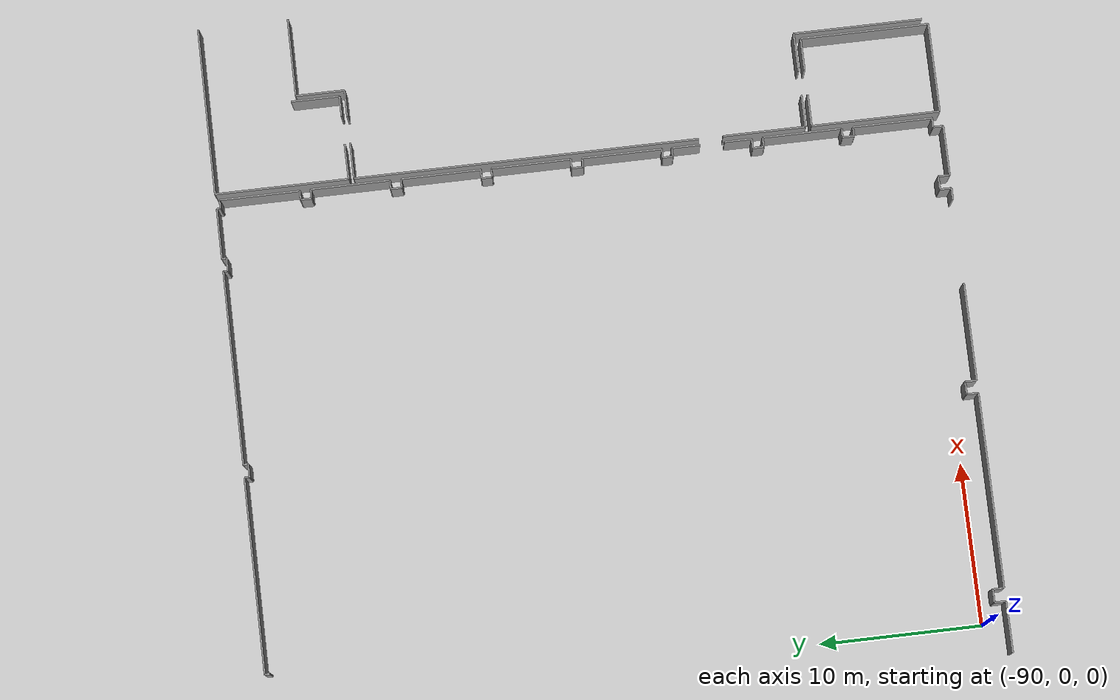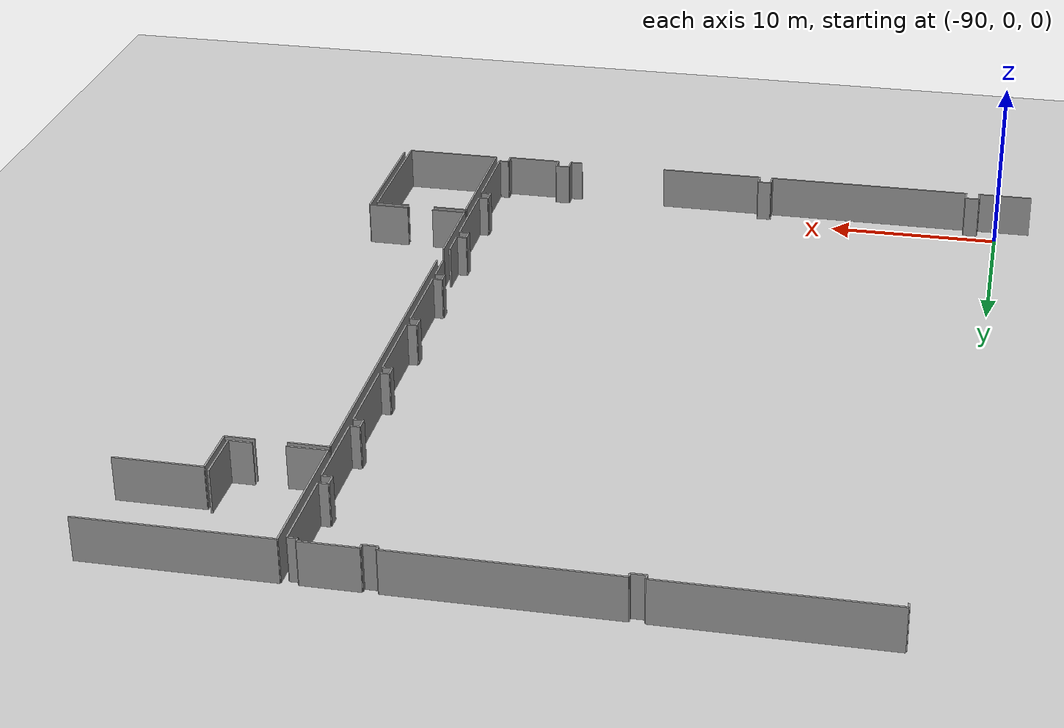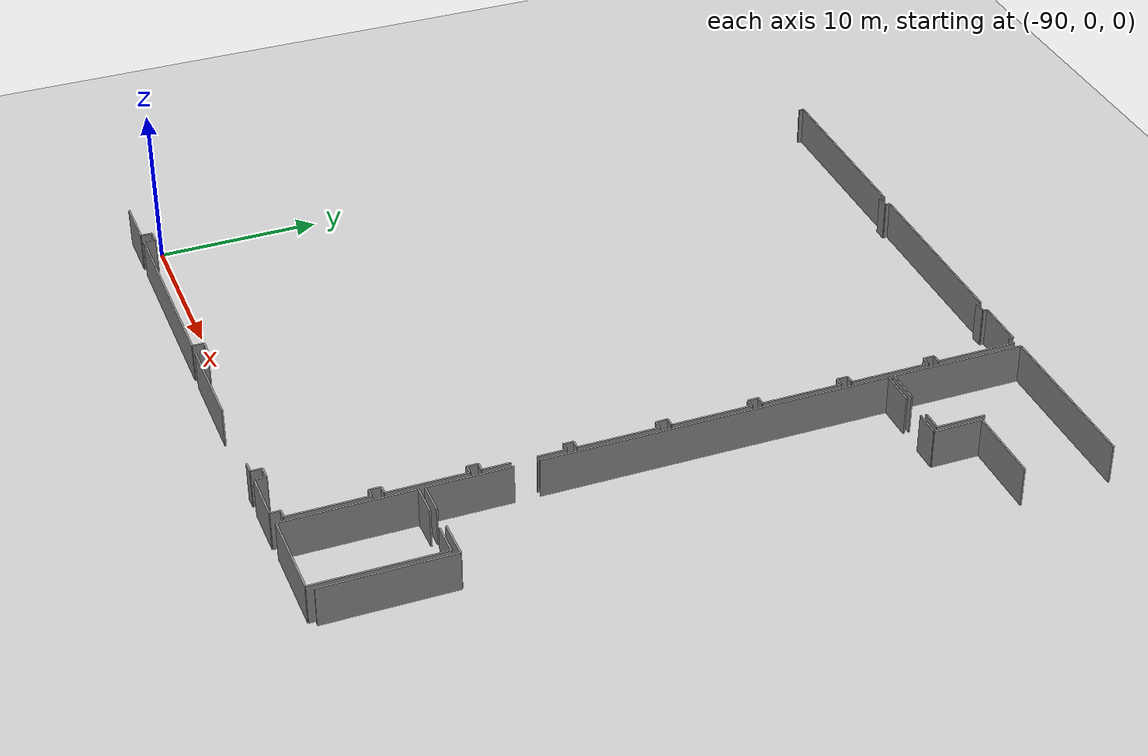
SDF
<sdf version="1.6">
 <world name="default">
  <model name="ground_plane">
   <static>1</static>
   <link name="link">
    <collision name="collision">
     <geometry><plane><normal>0 0 1</normal><size>100 100</size></plane></geometry>
     <surface><friction><ode><mu>100</mu><mu2>50</mu2></ode></friction></surface>
    </collision>
    <visual name="visual">
     <cast_shadows>0</cast_shadows>
     <geometry><plane><normal>0 0 1</normal><size>100 100</size></plane></geometry>
     <material>
      <script><uri>file://media/materials/scripts/gazebo.material</uri><name>Gazebo/Grey</name></script>
     </material>
    </visual>
   </link>
  </model>
  <model name="50015847">
   <static>1</static>
   <link name="Wall_186">
    <collision name="Wall_186_Collision">
     <geometry><box><size>0.315757360045 0.1 2.5</size></box></geometry>
     <pose>0.157878680022 0 1.25 0 0 0</pose>
    </collision>
    <visual name="Wall_186_Visual">
     <pose>0.157878680022 0 1.25 0 0 0</pose>
     <geometry><box><size>0.315757360045 0.1 2.5</size></box></geometry>
     <material>
      <script><uri>file://media/materials/scripts/gazebo.material</uri><name>Gazebo/Grey</name></script>
      <ambient>1 1 1 1</ambient>
     </material>
    </visual>
    <pose>44.2929780851 -0.563126048711 0 0 0 1.57079632679</pose>
   </link>
   <link name="Wall_187">
    <collision name="Wall_187_Collision">
     <geometry><box><size>12.0267453094 0.1 2.5</size></box></geometry>
     <pose>6.0133726547 0 1.25 0 0 0</pose>
    </collision>
    <visual name="Wall_187_Visual">
     <pose>6.0133726547 0 1.25 0 0 0</pose>
     <geometry><box><size>12.0267453094 0.1 2.5</size></box></geometry>
     <material>
      <script><uri>file://media/materials/scripts/gazebo.material</uri><name>Gazebo/Grey</name></script>
      <ambient>1 1 1 1</ambient>
     </material>
    </visual>
    <pose>44.2929780851 -0.247368688666 0 0 0 0.0</pose>
   </link>
   <link name="Wall_188">
    <collision name="Wall_188_Collision">
     <geometry><box><size>0.313215030254 0.1 2.5</size></box></geometry>
     <pose>0.156607515127 0 1.25 0 0 0</pose>
    </collision>
    <visual name="Wall_188_Visual">
     <pose>0.156607515127 0 1.25 0 0 0</pose>
     <geometry><box><size>0.313215030254 0.1 2.5</size></box></geometry>
     <material>
      <script><uri>file://media/materials/scripts/gazebo.material</uri><name>Gazebo/Grey</name></script>
      <ambient>1 1 1 1</ambient>
     </material>
    </visual>
    <pose>56.3197233945 -0.247368688666 0 0 0 -1.57079632679</pose>
   </link>
   <link name="Wall_189">
    <collision name="Wall_189_Collision">
     <geometry><box><size>0.802359282046 0.1 2.5</size></box></geometry>
     <pose>0.401179641023 0 1.25 0 0 0</pose>
    </collision>
    <visual name="Wall_189_Visual">
     <pose>0.401179641023 0 1.25 0 0 0</pose>
     <geometry><box><size>0.802359282046 0.1 2.5</size></box></geometry>
     <material>
      <script><uri>file://media/materials/scripts/gazebo.material</uri><name>Gazebo/Grey</name></script>
      <ambient>1 1 1 1</ambient>
     </material>
    </visual>
    <pose>56.3197233945 -0.56058371892 0 0 0 0.0</pose>
   </link>
   <link name="Wall_190">
    <collision name="Wall_190_Collision">
     <geometry><box><size>0.296689886612 0.1 2.5</size></box></geometry>
     <pose>0.148344943306 0 1.25 0 0 0</pose>
    </collision>
    <visual name="Wall_190_Visual">
     <pose>0.148344943306 0 1.25 0 0 0</pose>
     <geometry><box><size>0.296689886612 0.1 2.5</size></box></geometry>
     <material>
      <script><uri>file://media/materials/scripts/gazebo.material</uri><name>Gazebo/Grey</name></script>
      <ambient>1 1 1 1</ambient>
     </material>
    </visual>
    <pose>57.1220826766 -0.56058371892 0 0 0 1.57079632679</pose>
   </link>
   <link name="Wall_191">
    <collision name="Wall_191_Collision">
     <geometry><box><size>12.0005593126 0.1 2.5</size></box></geometry>
     <pose>6.00027965628 0 1.25 0 0 0</pose>
    </collision>
    <visual name="Wall_191_Visual">
     <pose>6.00027965628 0 1.25 0 0 0</pose>
     <geometry><box><size>12.0005593126 0.1 2.5</size></box></geometry>
     <material>
      <script><uri>file://media/materials/scripts/gazebo.material</uri><name>Gazebo/Grey</name></script>
      <ambient>1 1 1 1</ambient>
     </material>
    </visual>
    <pose>57.1220826766 -0.263893832308 0 0 0 0.0</pose>
   </link>
   <link name="Wall_192">
    <collision name="Wall_192_Collision">
     <geometry><box><size>0.276351248284 0.1 2.5</size></box></geometry>
     <pose>0.138175624142 0 1.25 0 0 0</pose>
    </collision>
    <visual name="Wall_192_Visual">
     <pose>0.138175624142 0 1.25 0 0 0</pose>
     <geometry><box><size>0.276351248284 0.1 2.5</size></box></geometry>
     <material>
      <script><uri>file://media/materials/scripts/gazebo.material</uri><name>Gazebo/Grey</name></script>
      <ambient>1 1 1 1</ambient>
     </material>
    </visual>
    <pose>69.1226419891 -0.263893832308 0 0 0 -1.57079632679</pose>
   </link>
   <link name="Wall_193">
    <collision name="Wall_193_Collision">
     <geometry><box><size>0.79829155438 0.1 2.5</size></box></geometry>
     <pose>0.39914577719 0 1.25 0 0 0</pose>
    </collision>
    <visual name="Wall_193_Visual">
     <pose>0.39914577719 0 1.25 0 0 0</pose>
     <geometry><box><size>0.79829155438 0.1 2.5</size></box></geometry>
     <material>
      <script><uri>file://media/materials/scripts/gazebo.material</uri><name>Gazebo/Grey</name></script>
      <ambient>1 1 1 1</ambient>
     </material>
    </visual>
    <pose>69.1226419891 -0.540245080592 0 0 0 0.0</pose>
   </link>
   <link name="Wall_194">
    <collision name="Wall_194_Collision">
     <geometry><box><size>0.282707072761 0.1 2.5</size></box></geometry>
     <pose>0.141353536381 0 1.25 0 0 0</pose>
    </collision>
    <visual name="Wall_194_Visual">
     <pose>0.141353536381 0 1.25 0 0 0</pose>
     <geometry><box><size>0.282707072761 0.1 2.5</size></box></geometry>
     <material>
      <script><uri>file://media/materials/scripts/gazebo.material</uri><name>Gazebo/Grey</name></script>
      <ambient>1 1 1 1</ambient>
     </material>
    </visual>
    <pose>69.9209335435 -0.540245080592 0 0 0 1.57079632679</pose>
   </link>
   <link name="Wall_195">
    <collision name="Wall_195_Collision">
     <geometry><box><size>3.12121828444 0.1 2.5</size></box></geometry>
     <pose>1.56060914222 0 1.25 0 0 0</pose>
    </collision>
    <visual name="Wall_195_Visual">
     <pose>1.56060914222 0 1.25 0 0 0</pose>
     <geometry><box><size>3.12121828444 0.1 2.5</size></box></geometry>
     <material>
      <script><uri>file://media/materials/scripts/gazebo.material</uri><name>Gazebo/Grey</name></script>
      <ambient>1 1 1 1</ambient>
     </material>
    </visual>
    <pose>69.9209335435 -0.25753800783 0 0 0 0.0</pose>
   </link>
   <link name="Wall_196">
    <collision name="Wall_196_Collision">
     <geometry><box><size>0.226267351401 0.1 2.5</size></box></geometry>
     <pose>0.1131336757 0 1.25 0 0 0</pose>
    </collision>
    <visual name="Wall_196_Visual">
     <pose>0.1131336757 0 1.25 0 0 0</pose>
     <geometry><box><size>0.226267351401 0.1 2.5</size></box></geometry>
     <material>
      <script><uri>file://media/materials/scripts/gazebo.material</uri><name>Gazebo/Grey</name></script>
      <ambient>1 1 1 1</ambient>
     </material>
    </visual>
    <pose>73.0421518279 -0.25753800783 0 0 0 -1.57079632679</pose>
   </link>
   <link name="Wall_197">
    <collision name="Wall_197_Collision">
     <geometry><box><size>0.53516042101 0.1 2.5</size></box></geometry>
     <pose>0.267580210505 0 1.25 0 0 0</pose>
    </collision>
    <visual name="Wall_197_Visual">
     <pose>0.267580210505 0 1.25 0 0 0</pose>
     <geometry><box><size>0.53516042101 0.1 2.5</size></box></geometry>
     <material>
      <script><uri>file://media/materials/scripts/gazebo.material</uri><name>Gazebo/Grey</name></script>
      <ambient>1 1 1 1</ambient>
     </material>
    </visual>
    <pose>73.0421518279 -0.483805359231 0 0 0 0.0</pose>
   </link>
   <link name="Wall_198">
    <collision name="Wall_198_Collision">
     <geometry><box><size>4.95703462653 0.1 2.5</size></box></geometry>
     <pose>2.47851731327 0 1.25 0 0 0</pose>
    </collision>
    <visual name="Wall_198_Visual">
     <pose>2.47851731327 0 1.25 0 0 0</pose>
     <geometry><box><size>4.95703462653 0.1 2.5</size></box></geometry>
     <material>
      <script><uri>file://media/materials/scripts/gazebo.material</uri><name>Gazebo/Grey</name></script>
      <ambient>1 1 1 1</ambient>
     </material>
    </visual>
    <pose>73.5773122489 -0.483805359231 0 0 0 -1.57079632679</pose>
   </link>
   <link name="Wall_199">
    <collision name="Wall_199_Collision">
     <geometry><box><size>0.550922865714 0.1 2.5</size></box></geometry>
     <pose>0.275461432857 0 1.25 0 0 0</pose>
    </collision>
    <visual name="Wall_199_Visual">
     <pose>0.275461432857 0 1.25 0 0 0</pose>
     <geometry><box><size>0.550922865714 0.1 2.5</size></box></geometry>
     <material>
      <script><uri>file://media/materials/scripts/gazebo.material</uri><name>Gazebo/Grey</name></script>
      <ambient>1 1 1 1</ambient>
     </material>
    </visual>
    <pose>73.5773122489 -5.44083998576 0 0 0 3.14159265359</pose>
   </link>
   <link name="Wall_200">
    <collision name="Wall_200_Collision">
     <geometry><box><size>0.670412365892 0.1 2.5</size></box></geometry>
     <pose>0.335206182946 0 1.25 0 0 0</pose>
    </collision>
    <visual name="Wall_200_Visual">
     <pose>0.335206182946 0 1.25 0 0 0</pose>
     <geometry><box><size>0.670412365892 0.1 2.5</size></box></geometry>
     <material>
      <script><uri>file://media/materials/scripts/gazebo.material</uri><name>Gazebo/Grey</name></script>
      <ambient>1 1 1 1</ambient>
     </material>
    </visual>
    <pose>73.0263893832 -5.44083998576 0 0 0 -1.57079632679</pose>
   </link>
   <link name="Wall_201">
    <collision name="Wall_201_Collision">
     <geometry><box><size>0.571515737021 0.1 2.5</size></box></geometry>
     <pose>0.285757868511 0 1.25 0 0 0</pose>
    </collision>
    <visual name="Wall_201_Visual">
     <pose>0.285757868511 0 1.25 0 0 0</pose>
     <geometry><box><size>0.571515737021 0.1 2.5</size></box></geometry>
     <material>
      <script><uri>file://media/materials/scripts/gazebo.material</uri><name>Gazebo/Grey</name></script>
      <ambient>1 1 1 1</ambient>
     </material>
    </visual>
    <pose>73.0263893832 -6.11125235166 0 0 0 0.0</pose>
   </link>
   <link name="Wall_202">
    <collision name="Wall_202_Collision">
     <geometry><box><size>4.90491686582 0.1 2.5</size></box></geometry>
     <pose>2.45245843291 0 1.25 0 0 0</pose>
    </collision>
    <visual name="Wall_202_Visual">
     <pose>2.45245843291 0 1.25 0 0 0</pose>
     <geometry><box><size>4.90491686582 0.1 2.5</size></box></geometry>
     <material>
      <script><uri>file://media/materials/scripts/gazebo.material</uri><name>Gazebo/Grey</name></script>
      <ambient>1 1 1 1</ambient>
     </material>
    </visual>
    <pose>73.5979051203 -6.11125235166 0 0 0 -1.57079632679</pose>
   </link>
   <link name="Wall_203">
    <collision name="Wall_203_Collision">
     <geometry><box><size>0.54634667209 0.1 2.5</size></box></geometry>
     <pose>0.273173336045 0 1.25 0 0 0</pose>
    </collision>
    <visual name="Wall_203_Visual">
     <pose>0.273173336045 0 1.25 0 0 0</pose>
     <geometry><box><size>0.54634667209 0.1 2.5</size></box></geometry>
     <material>
      <script><uri>file://media/materials/scripts/gazebo.material</uri><name>Gazebo/Grey</name></script>
      <ambient>1 1 1 1</ambient>
     </material>
    </visual>
    <pose>73.5979051203 -11.0161692175 0 0 0 3.14159265359</pose>
   </link>
   <link name="Wall_204">
    <collision name="Wall_204_Collision">
     <geometry><box><size>0.688208674429 0.1 2.5</size></box></geometry>
     <pose>0.344104337215 0 1.25 0 0 0</pose>
    </collision>
    <visual name="Wall_204_Visual">
     <pose>0.344104337215 0 1.25 0 0 0</pose>
     <geometry><box><size>0.688208674429 0.1 2.5</size></box></geometry>
     <material>
      <script><uri>file://media/materials/scripts/gazebo.material</uri><name>Gazebo/Grey</name></script>
      <ambient>1 1 1 1</ambient>
     </material>
    </visual>
    <pose>73.0515584482 -11.0161692175 0 0 0 -1.57079632679</pose>
   </link>
   <link name="Wall_205">
    <collision name="Wall_205_Collision">
     <geometry><box><size>0.554482127422 0.1 2.5</size></box></geometry>
     <pose>0.277241063711 0 1.25 0 0 0</pose>
    </collision>
    <visual name="Wall_205_Visual">
     <pose>0.277241063711 0 1.25 0 0 0</pose>
     <geometry><box><size>0.554482127422 0.1 2.5</size></box></geometry>
     <material>
      <script><uri>file://media/materials/scripts/gazebo.material</uri><name>Gazebo/Grey</name></script>
      <ambient>1 1 1 1</ambient>
     </material>
    </visual>
    <pose>73.0515584482 -11.7043778919 0 0 0 0.0</pose>
   </link>
   <link name="Wall_206">
    <collision name="Wall_206_Collision">
     <geometry><box><size>4.94025524991 0.1 2.5</size></box></geometry>
     <pose>2.47012762496 0 1.25 0 0 0</pose>
    </collision>
    <visual name="Wall_206_Visual">
     <pose>2.47012762496 0 1.25 0 0 0</pose>
     <geometry><box><size>4.94025524991 0.1 2.5</size></box></geometry>
     <material>
      <script><uri>file://media/materials/scripts/gazebo.material</uri><name>Gazebo/Grey</name></script>
      <ambient>1 1 1 1</ambient>
     </material>
    </visual>
    <pose>73.6060405756 -11.7043778919 0 0 0 -1.57079632679</pose>
   </link>
   <link name="Wall_207">
    <collision name="Wall_207_Collision">
     <geometry><box><size>0.54075354655 0.1 2.5</size></box></geometry>
     <pose>0.270376773275 0 1.25 0 0 0</pose>
    </collision>
    <visual name="Wall_207_Visual">
     <pose>0.270376773275 0 1.25 0 0 0</pose>
     <geometry><box><size>0.54075354655 0.1 2.5</size></box></geometry>
     <material>
      <script><uri>file://media/materials/scripts/gazebo.material</uri><name>Gazebo/Grey</name></script>
      <ambient>1 1 1 1</ambient>
     </material>
    </visual>
    <pose>73.6060405756 -16.6446331418 0 0 0 3.14159265359</pose>
   </link>
   <link name="Wall_208">
    <collision name="Wall_208_Collision">
     <geometry><box><size>0.649311028627 0.1 2.5</size></box></geometry>
     <pose>0.324655514313 0 1.25 0 0 0</pose>
    </collision>
    <visual name="Wall_208_Visual">
     <pose>0.324655514313 0 1.25 0 0 0</pose>
     <geometry><box><size>0.649311028627 0.1 2.5</size></box></geometry>
     <material>
      <script><uri>file://media/materials/scripts/gazebo.material</uri><name>Gazebo/Grey</name></script>
      <ambient>1 1 1 1</ambient>
     </material>
    </visual>
    <pose>73.065287029 -16.6446331418 0 0 0 -1.57079632679</pose>
   </link>
   <link name="Wall_209">
    <collision name="Wall_209_Collision">
     <geometry><box><size>0.55499059338 0.1 2.5</size></box></geometry>
     <pose>0.27749529669 0 1.25 0 0 0</pose>
    </collision>
    <visual name="Wall_209_Visual">
     <pose>0.27749529669 0 1.25 0 0 0</pose>
     <geometry><box><size>0.55499059338 0.1 2.5</size></box></geometry>
     <material>
      <script><uri>file://media/materials/scripts/gazebo.material</uri><name>Gazebo/Grey</name></script>
      <ambient>1 1 1 1</ambient>
     </material>
    </visual>
    <pose>73.065287029 -17.2939441704 0 0 0 0.0</pose>
   </link>
   <link name="Wall_210">
    <collision name="Wall_210_Collision">
     <geometry><box><size>4.92728936798 0.1 2.5</size></box></geometry>
     <pose>2.46364468399 0 1.25 0 0 0</pose>
    </collision>
    <visual name="Wall_210_Visual">
     <pose>2.46364468399 0 1.25 0 0 0</pose>
     <geometry><box><size>4.92728936798 0.1 2.5</size></box></geometry>
     <material>
      <script><uri>file://media/materials/scripts/gazebo.material</uri><name>Gazebo/Grey</name></script>
      <ambient>1 1 1 1</ambient>
     </material>
    </visual>
    <pose>73.6202776224 -17.2939441704 0 0 0 -1.57079632679</pose>
   </link>
   <link name="Wall_211">
    <collision name="Wall_211_Collision">
     <geometry><box><size>0.563126048711 0.1 2.5</size></box></geometry>
     <pose>0.281563024356 0 1.25 0 0 0</pose>
    </collision>
    <visual name="Wall_211_Visual">
     <pose>0.281563024356 0 1.25 0 0 0</pose>
     <geometry><box><size>0.563126048711 0.1 2.5</size></box></geometry>
     <material>
      <script><uri>file://media/materials/scripts/gazebo.material</uri><name>Gazebo/Grey</name></script>
      <ambient>1 1 1 1</ambient>
     </material>
    </visual>
    <pose>73.6202776224 -22.2212335384 0 0 0 3.14159265359</pose>
   </link>
   <link name="Wall_212">
    <collision name="Wall_212_Collision">
     <geometry><box><size>0.714903137235 0.1 2.5</size></box></geometry>
     <pose>0.357451568617 0 1.25 0 0 0</pose>
    </collision>
    <visual name="Wall_212_Visual">
     <pose>0.357451568617 0 1.25 0 0 0</pose>
     <geometry><box><size>0.714903137235 0.1 2.5</size></box></geometry>
     <material>
      <script><uri>file://media/materials/scripts/gazebo.material</uri><name>Gazebo/Grey</name></script>
      <ambient>1 1 1 1</ambient>
     </material>
    </visual>
    <pose>73.0571515737 -22.2212335384 0 0 0 -1.57079632679</pose>
   </link>
   <link name="Wall_213">
    <collision name="Wall_213_Collision">
     <geometry><box><size>0.556770224233 0.1 2.5</size></box></geometry>
     <pose>0.278385112117 0 1.25 0 0 0</pose>
    </collision>
    <visual name="Wall_213_Visual">
     <pose>0.278385112117 0 1.25 0 0 0</pose>
     <geometry><box><size>0.556770224233 0.1 2.5</size></box></geometry>
     <material>
      <script><uri>file://media/materials/scripts/gazebo.material</uri><name>Gazebo/Grey</name></script>
      <ambient>1 1 1 1</ambient>
     </material>
    </visual>
    <pose>73.0571515737 -22.9361366756 0 0 0 0.0</pose>
   </link>
   <link name="Wall_214">
    <collision name="Wall_214_Collision">
     <geometry><box><size>4.94483144353 0.1 2.5</size></box></geometry>
     <pose>2.47241572177 0 1.25 0 0 0</pose>
    </collision>
    <visual name="Wall_214_Visual">
     <pose>2.47241572177 0 1.25 0 0 0</pose>
     <geometry><box><size>4.94483144353 0.1 2.5</size></box></geometry>
     <material>
      <script><uri>file://media/materials/scripts/gazebo.material</uri><name>Gazebo/Grey</name></script>
      <ambient>1 1 1 1</ambient>
     </material>
    </visual>
    <pose>73.6139217979 -22.9361366756 0 0 0 -1.57079632679</pose>
   </link>
   <link name="Wall_215">
    <collision name="Wall_215_Collision">
     <geometry><box><size>0.548634768902 0.1 2.5</size></box></geometry>
     <pose>0.274317384451 0 1.25 0 0 0</pose>
    </collision>
    <visual name="Wall_215_Visual">
     <pose>0.274317384451 0 1.25 0 0 0</pose>
     <geometry><box><size>0.548634768902 0.1 2.5</size></box></geometry>
     <material>
      <script><uri>file://media/materials/scripts/gazebo.material</uri><name>Gazebo/Grey</name></script>
      <ambient>1 1 1 1</ambient>
     </material>
    </visual>
    <pose>73.6139217979 -27.8809681192 0 0 0 3.14159265359</pose>
   </link>
   <link name="Wall_216">
    <collision name="Wall_216_Collision">
     <geometry><box><size>0.615243809427 0.1 2.5</size></box></geometry>
     <pose>0.307621904713 0 1.25 0 0 0</pose>
    </collision>
    <visual name="Wall_216_Visual">
     <pose>0.307621904713 0 1.25 0 0 0</pose>
     <geometry><box><size>0.615243809427 0.1 2.5</size></box></geometry>
     <material>
      <script><uri>file://media/materials/scripts/gazebo.material</uri><name>Gazebo/Grey</name></script>
      <ambient>1 1 1 1</ambient>
     </material>
    </visual>
    <pose>73.065287029 -27.8809681192 0 0 0 -1.57079632679</pose>
   </link>
   <link name="Wall_217">
    <collision name="Wall_217_Collision">
     <geometry><box><size>0.540245080592 0.1 2.5</size></box></geometry>
     <pose>0.270122540296 0 1.25 0 0 0</pose>
    </collision>
    <visual name="Wall_217_Visual">
     <pose>0.270122540296 0 1.25 0 0 0</pose>
     <geometry><box><size>0.540245080592 0.1 2.5</size></box></geometry>
     <material>
      <script><uri>file://media/materials/scripts/gazebo.material</uri><name>Gazebo/Grey</name></script>
      <ambient>1 1 1 1</ambient>
     </material>
    </visual>
    <pose>73.065287029 -28.4962119286 0 0 0 0.0</pose>
   </link>
   <link name="Wall_218">
    <collision name="Wall_218_Collision">
     <geometry><box><size>1.75573295368 0.1 2.5</size></box></geometry>
     <pose>0.877866476839 0 1.25 0 0 0</pose>
    </collision>
    <visual name="Wall_218_Visual">
     <pose>0.877866476839 0 1.25 0 0 0</pose>
     <geometry><box><size>1.75573295368 0.1 2.5</size></box></geometry>
     <material>
      <script><uri>file://media/materials/scripts/gazebo.material</uri><name>Gazebo/Grey</name></script>
      <ambient>1 1 1 1</ambient>
     </material>
    </visual>
    <pose>73.6055321096 -28.4962119286 0 0 0 -1.57079632679</pose>
   </link>
   <link name="Wall_219">
    <collision name="Wall_219_Collision">
     <geometry><box><size>1.69370010678 0.1 2.5</size></box></geometry>
     <pose>0.846850053389 0 1.25 0 0 0</pose>
    </collision>
    <visual name="Wall_219_Visual">
     <pose>0.846850053389 0 1.25 0 0 0</pose>
     <geometry><box><size>1.69370010678 0.1 2.5</size></box></geometry>
     <material>
      <script><uri>file://media/materials/scripts/gazebo.material</uri><name>Gazebo/Grey</name></script>
      <ambient>1 1 1 1</ambient>
     </material>
    </visual>
    <pose>73.6055321096 -31.7717496314 0 0 0 -1.57079632679</pose>
   </link>
   <link name="Wall_220">
    <collision name="Wall_220_Collision">
     <geometry><box><size>0.579142726394 0.1 2.5</size></box></geometry>
     <pose>0.289571363197 0 1.25 0 0 0</pose>
    </collision>
    <visual name="Wall_220_Visual">
     <pose>0.289571363197 0 1.25 0 0 0</pose>
     <geometry><box><size>0.579142726394 0.1 2.5</size></box></geometry>
     <material>
      <script><uri>file://media/materials/scripts/gazebo.material</uri><name>Gazebo/Grey</name></script>
      <ambient>1 1 1 1</ambient>
     </material>
    </visual>
    <pose>73.6055321096 -33.4654497381 0 0 0 3.14159265359</pose>
   </link>
   <link name="Wall_221">
    <collision name="Wall_221_Collision">
     <geometry><box><size>0.682615548889 0.1 2.5</size></box></geometry>
     <pose>0.341307774445 0 1.25 0 0 0</pose>
    </collision>
    <visual name="Wall_221_Visual">
     <pose>0.341307774445 0 1.25 0 0 0</pose>
     <geometry><box><size>0.682615548889 0.1 2.5</size></box></geometry>
     <material>
      <script><uri>file://media/materials/scripts/gazebo.material</uri><name>Gazebo/Grey</name></script>
      <ambient>1 1 1 1</ambient>
     </material>
    </visual>
    <pose>73.0263893832 -33.4654497381 0 0 0 -1.57079632679</pose>
   </link>
   <link name="Wall_222">
    <collision name="Wall_222_Collision">
     <geometry><box><size>0.581430823206 0.1 2.5</size></box></geometry>
     <pose>0.290715411603 0 1.25 0 0 0</pose>
    </collision>
    <visual name="Wall_222_Visual">
     <pose>0.290715411603 0 1.25 0 0 0</pose>
     <geometry><box><size>0.581430823206 0.1 2.5</size></box></geometry>
     <material>
      <script><uri>file://media/materials/scripts/gazebo.material</uri><name>Gazebo/Grey</name></script>
      <ambient>1 1 1 1</ambient>
     </material>
    </visual>
    <pose>73.0263893832 -34.148065287 0 0 0 0.0</pose>
   </link>
   <link name="Wall_223">
    <collision name="Wall_223_Collision">
     <geometry><box><size>4.89576447857 0.1 2.5</size></box></geometry>
     <pose>2.44788223928 0 1.25 0 0 0</pose>
    </collision>
    <visual name="Wall_223_Visual">
     <pose>2.44788223928 0 1.25 0 0 0</pose>
     <geometry><box><size>4.89576447857 0.1 2.5</size></box></geometry>
     <material>
      <script><uri>file://media/materials/scripts/gazebo.material</uri><name>Gazebo/Grey</name></script>
      <ambient>1 1 1 1</ambient>
     </material>
    </visual>
    <pose>73.6078202064 -34.148065287 0 0 0 -1.57079632679</pose>
   </link>
   <link name="Wall_224">
    <collision name="Wall_224_Collision">
     <geometry><box><size>0.557532923171 0.1 2.5</size></box></geometry>
     <pose>0.278766461585 0 1.25 0 0 0</pose>
    </collision>
    <visual name="Wall_224_Visual">
     <pose>0.278766461585 0 1.25 0 0 0</pose>
     <geometry><box><size>0.557532923171 0.1 2.5</size></box></geometry>
     <material>
      <script><uri>file://media/materials/scripts/gazebo.material</uri><name>Gazebo/Grey</name></script>
      <ambient>1 1 1 1</ambient>
     </material>
    </visual>
    <pose>73.6078202064 -39.0438297656 0 0 0 3.14159265359</pose>
   </link>
   <link name="Wall_225">
    <collision name="Wall_225_Collision">
     <geometry><box><size>0.71642853511 0.1 2.5</size></box></geometry>
     <pose>0.358214267555 0 1.25 0 0 0</pose>
    </collision>
    <visual name="Wall_225_Visual">
     <pose>0.358214267555 0 1.25 0 0 0</pose>
     <geometry><box><size>0.71642853511 0.1 2.5</size></box></geometry>
     <material>
      <script><uri>file://media/materials/scripts/gazebo.material</uri><name>Gazebo/Grey</name></script>
      <ambient>1 1 1 1</ambient>
     </material>
    </visual>
    <pose>73.0502872833 -39.0438297656 0 0 0 -1.57079632679</pose>
   </link>
   <link name="Wall_226">
    <collision name="Wall_226_Collision">
     <geometry><box><size>0.565668378502 0.1 2.5</size></box></geometry>
     <pose>0.282834189251 0 1.25 0 0 0</pose>
    </collision>
    <visual name="Wall_226_Visual">
     <pose>0.282834189251 0 1.25 0 0 0</pose>
     <geometry><box><size>0.565668378502 0.1 2.5</size></box></geometry>
     <material>
      <script><uri>file://media/materials/scripts/gazebo.material</uri><name>Gazebo/Grey</name></script>
      <ambient>1 1 1 1</ambient>
     </material>
    </visual>
    <pose>73.0502872833 -39.7602583007 0 0 0 0.0</pose>
   </link>
   <link name="Wall_227">
    <collision name="Wall_227_Collision">
     <geometry><box><size>4.91279808817 0.1 2.5</size></box></geometry>
     <pose>2.45639904408 0 1.25 0 0 0</pose>
    </collision>
    <visual name="Wall_227_Visual">
     <pose>2.45639904408 0 1.25 0 0 0</pose>
     <geometry><box><size>4.91279808817 0.1 2.5</size></box></geometry>
     <material>
      <script><uri>file://media/materials/scripts/gazebo.material</uri><name>Gazebo/Grey</name></script>
      <ambient>1 1 1 1</ambient>
     </material>
    </visual>
    <pose>73.6159556618 -39.7602583007 0 0 0 -1.57079632679</pose>
   </link>
   <link name="Wall_228">
    <collision name="Wall_228_Collision">
     <geometry><box><size>0.569736106168 0.1 2.5</size></box></geometry>
     <pose>0.284868053084 0 1.25 0 0 0</pose>
    </collision>
    <visual name="Wall_228_Visual">
     <pose>0.284868053084 0 1.25 0 0 0</pose>
     <geometry><box><size>0.569736106168 0.1 2.5</size></box></geometry>
     <material>
      <script><uri>file://media/materials/scripts/gazebo.material</uri><name>Gazebo/Grey</name></script>
      <ambient>1 1 1 1</ambient>
     </material>
    </visual>
    <pose>73.6159556618 -44.6730563889 0 0 0 3.14159265359</pose>
   </link>
   <link name="Wall_229">
    <collision name="Wall_229_Collision">
     <geometry><box><size>0.622362332842 0.1 2.5</size></box></geometry>
     <pose>0.311181166421 0 1.25 0 0 0</pose>
    </collision>
    <visual name="Wall_229_Visual">
     <pose>0.311181166421 0 1.25 0 0 0</pose>
     <geometry><box><size>0.622362332842 0.1 2.5</size></box></geometry>
     <material>
      <script><uri>file://media/materials/scripts/gazebo.material</uri><name>Gazebo/Grey</name></script>
      <ambient>1 1 1 1</ambient>
     </material>
    </visual>
    <pose>73.0462195556 -44.6730563889 0 0 0 -1.57079632679</pose>
   </link>
   <link name="Wall_230">
    <collision name="Wall_230_Collision">
     <geometry><box><size>3.10291350994 0.1 2.5</size></box></geometry>
     <pose>1.55145675497 0 1.25 0 0 0</pose>
    </collision>
    <visual name="Wall_230_Visual">
     <pose>1.55145675497 0 1.25 0 0 0</pose>
     <geometry><box><size>3.10291350994 0.1 2.5</size></box></geometry>
     <material>
      <script><uri>file://media/materials/scripts/gazebo.material</uri><name>Gazebo/Grey</name></script>
      <ambient>1 1 1 1</ambient>
     </material>
    </visual>
    <pose>73.0462195556 -45.2954187217 0 0 0 3.14159265359</pose>
   </link>
   <link name="Wall_231">
    <collision name="Wall_231_Collision">
     <geometry><box><size>0.703208420196 0.1 2.5</size></box></geometry>
     <pose>0.351604210098 0 1.25 0 0 0</pose>
    </collision>
    <visual name="Wall_231_Visual">
     <pose>0.351604210098 0 1.25 0 0 0</pose>
     <geometry><box><size>0.703208420196 0.1 2.5</size></box></geometry>
     <material>
      <script><uri>file://media/materials/scripts/gazebo.material</uri><name>Gazebo/Grey</name></script>
      <ambient>1 1 1 1</ambient>
     </material>
    </visual>
    <pose>69.9433060457 -45.2954187217 0 0 0 1.57079632679</pose>
   </link>
   <link name="Wall_232">
    <collision name="Wall_232_Collision">
     <geometry><box><size>0.821935221437 0.1 2.5</size></box></geometry>
     <pose>0.410967610718 0 1.25 0 0 0</pose>
    </collision>
    <visual name="Wall_232_Visual">
     <pose>0.410967610718 0 1.25 0 0 0</pose>
     <geometry><box><size>0.821935221437 0.1 2.5</size></box></geometry>
     <material>
      <script><uri>file://media/materials/scripts/gazebo.material</uri><name>Gazebo/Grey</name></script>
      <ambient>1 1 1 1</ambient>
     </material>
    </visual>
    <pose>69.9433060457 -44.5922103015 0 0 0 3.14159265359</pose>
   </link>
   <link name="Wall_233">
    <collision name="Wall_233_Collision">
     <geometry><box><size>0.703208420196 0.1 2.5</size></box></geometry>
     <pose>0.351604210098 0 1.25 0 0 0</pose>
    </collision>
    <visual name="Wall_233_Visual">
     <pose>0.351604210098 0 1.25 0 0 0</pose>
     <geometry><box><size>0.703208420196 0.1 2.5</size></box></geometry>
     <material>
      <script><uri>file://media/materials/scripts/gazebo.material</uri><name>Gazebo/Grey</name></script>
      <ambient>1 1 1 1</ambient>
     </material>
    </visual>
    <pose>69.1213708242 -44.5922103015 0 0 0 -1.57079632679</pose>
   </link>
   <link name="Wall_234">
    <collision name="Wall_234_Collision">
     <geometry><box><size>0.715157370214 0.1 2.5</size></box></geometry>
     <pose>0.357578685107 0 1.25 0 0 0</pose>
    </collision>
    <visual name="Wall_234_Visual">
     <pose>0.357578685107 0 1.25 0 0 0</pose>
     <geometry><box><size>0.715157370214 0.1 2.5</size></box></geometry>
     <material>
      <script><uri>file://media/materials/scripts/gazebo.material</uri><name>Gazebo/Grey</name></script>
      <ambient>1 1 1 1</ambient>
     </material>
    </visual>
    <pose>69.1213708242 -45.2954187217 0 0 0 3.14159265359</pose>
   </link>
   <link name="Wall_235">
    <collision name="Wall_235_Collision">
     <geometry><box><size>6.06498194946 0.1 2.5</size></box></geometry>
     <pose>3.03249097473 0 1.25 0 0 0</pose>
    </collision>
    <visual name="Wall_235_Visual">
     <pose>3.03249097473 0 1.25 0 0 0</pose>
     <geometry><box><size>6.06498194946 0.1 2.5</size></box></geometry>
     <material>
      <script><uri>file://media/materials/scripts/gazebo.material</uri><name>Gazebo/Grey</name></script>
      <ambient>1 1 1 1</ambient>
     </material>
    </visual>
    <pose>63.1690140845 -45.2954187217 0 0 0 3.14159265359</pose>
   </link>
   <link name="Wall_236">
    <collision name="Wall_236_Collision">
     <geometry><box><size>0.712615040423 0.1 2.5</size></box></geometry>
     <pose>0.356307520212 0 1.25 0 0 0</pose>
    </collision>
    <visual name="Wall_236_Visual">
     <pose>0.356307520212 0 1.25 0 0 0</pose>
     <geometry><box><size>0.712615040423 0.1 2.5</size></box></geometry>
     <material>
      <script><uri>file://media/materials/scripts/gazebo.material</uri><name>Gazebo/Grey</name></script>
      <ambient>1 1 1 1</ambient>
     </material>
    </visual>
    <pose>57.104032135 -45.2954187217 0 0 0 1.57079632679</pose>
   </link>
   <link name="Wall_237">
    <collision name="Wall_237_Collision">
     <geometry><box><size>0.779224080948 0.1 2.5</size></box></geometry>
     <pose>0.389612040474 0 1.25 0 0 0</pose>
    </collision>
    <visual name="Wall_237_Visual">
     <pose>0.389612040474 0 1.25 0 0 0</pose>
     <geometry><box><size>0.779224080948 0.1 2.5</size></box></geometry>
     <material>
      <script><uri>file://media/materials/scripts/gazebo.material</uri><name>Gazebo/Grey</name></script>
      <ambient>1 1 1 1</ambient>
     </material>
    </visual>
    <pose>57.104032135 -44.5828036813 0 0 0 3.14159265359</pose>
   </link>
   <link name="Wall_238">
    <collision name="Wall_238_Collision">
     <geometry><box><size>0.717445467026 0.1 2.5</size></box></geometry>
     <pose>0.358722733513 0 1.25 0 0 0</pose>
    </collision>
    <visual name="Wall_238_Visual">
     <pose>0.358722733513 0 1.25 0 0 0</pose>
     <geometry><box><size>0.717445467026 0.1 2.5</size></box></geometry>
     <material>
      <script><uri>file://media/materials/scripts/gazebo.material</uri><name>Gazebo/Grey</name></script>
      <ambient>1 1 1 1</ambient>
     </material>
    </visual>
    <pose>56.3248080541 -44.5828036813 0 0 0 -1.57079632679</pose>
   </link>
   <link name="Wall_239">
    <collision name="Wall_239_Collision">
     <geometry><box><size>12.0051355062 0.1 2.5</size></box></geometry>
     <pose>6.00256775309 0 1.25 0 0 0</pose>
    </collision>
    <visual name="Wall_239_Visual">
     <pose>6.00256775309 0 1.25 0 0 0</pose>
     <geometry><box><size>12.0051355062 0.1 2.5</size></box></geometry>
     <material>
      <script><uri>file://media/materials/scripts/gazebo.material</uri><name>Gazebo/Grey</name></script>
      <ambient>1 1 1 1</ambient>
     </material>
    </visual>
    <pose>56.3248080541 -45.3002491483 0 0 0 3.14159265359</pose>
   </link>
   <link name="Wall_240">
    <collision name="Wall_240_Collision">
     <geometry><box><size>0.691259470178 0.1 2.5</size></box></geometry>
     <pose>0.345629735089 0 1.25 0 0 0</pose>
    </collision>
    <visual name="Wall_240_Visual">
     <pose>0.345629735089 0 1.25 0 0 0</pose>
     <geometry><box><size>0.691259470178 0.1 2.5</size></box></geometry>
     <material>
      <script><uri>file://media/materials/scripts/gazebo.material</uri><name>Gazebo/Grey</name></script>
      <ambient>1 1 1 1</ambient>
     </material>
    </visual>
    <pose>44.3196725479 -45.3002491483 0 0 0 1.57079632679</pose>
   </link>
   <link name="Wall_241">
    <collision name="Wall_241_Collision">
     <geometry><box><size>0.804901611837 0.1 2.5</size></box></geometry>
     <pose>0.402450805919 0 1.25 0 0 0</pose>
    </collision>
    <visual name="Wall_241_Visual">
     <pose>0.402450805919 0 1.25 0 0 0</pose>
     <geometry><box><size>0.804901611837 0.1 2.5</size></box></geometry>
     <material>
      <script><uri>file://media/materials/scripts/gazebo.material</uri><name>Gazebo/Grey</name></script>
      <ambient>1 1 1 1</ambient>
     </material>
    </visual>
    <pose>44.3196725479 -44.6089896781 0 0 0 3.14159265359</pose>
   </link>
   <link name="Wall_242">
    <collision name="Wall_242_Collision">
     <geometry><box><size>0.705496517008 0.1 2.5</size></box></geometry>
     <pose>0.352748258504 0 1.25 0 0 0</pose>
    </collision>
    <visual name="Wall_242_Visual">
     <pose>0.352748258504 0 1.25 0 0 0</pose>
     <geometry><box><size>0.705496517008 0.1 2.5</size></box></geometry>
     <material>
      <script><uri>file://media/materials/scripts/gazebo.material</uri><name>Gazebo/Grey</name></script>
      <ambient>1 1 1 1</ambient>
     </material>
    </visual>
    <pose>43.5147709361 -44.6089896781 0 0 0 -1.57079632679</pose>
   </link>
   <link name="Wall_243">
    <collision name="Wall_243_Collision">
     <geometry><box><size>3.14995523939 0.1 2.5</size></box></geometry>
     <pose>1.57497761969 0 1.25 0 0 0</pose>
    </collision>
    <visual name="Wall_243_Visual">
     <pose>1.57497761969 0 1.25 0 0 0</pose>
     <geometry><box><size>3.14995523939 0.1 2.5</size></box></geometry>
     <material>
      <script><uri>file://media/materials/scripts/gazebo.material</uri><name>Gazebo/Grey</name></script>
      <ambient>1 1 1 1</ambient>
     </material>
    </visual>
    <pose>43.5147709361 -45.3144861951 0 0 0 -3.13925206061</pose>
   </link>
   <link name="Wall_278">
    <collision name="Wall_278_Collision">
     <geometry><box><size>2.24741953526 0.1 2.5</size></box></geometry>
     <pose>1.12370976763 0 1.25 0 0 0</pose>
    </collision>
    <visual name="Wall_278_Visual">
     <pose>1.12370976763 0 1.25 0 0 0</pose>
     <geometry><box><size>2.24741953526 0.1 2.5</size></box></geometry>
     <material>
      <script><uri>file://media/materials/scripts/gazebo.material</uri><name>Gazebo/Grey</name></script>
      <ambient>1 1 1 1</ambient>
     </material>
    </visual>
    <pose>73.9673056389 -8.83866375146 0 0 0 0.0</pose>
   </link>
   <link name="Wall_279">
    <collision name="Wall_279_Collision">
     <geometry><box><size>1.62149794071 0.1 2.5</size></box></geometry>
     <pose>0.810748970356 0 1.25 0 0 0</pose>
    </collision>
    <visual name="Wall_279_Visual">
     <pose>0.810748970356 0 1.25 0 0 0</pose>
     <geometry><box><size>1.62149794071 0.1 2.5</size></box></geometry>
     <material>
      <script><uri>file://media/materials/scripts/gazebo.material</uri><name>Gazebo/Grey</name></script>
      <ambient>1 1 1 1</ambient>
     </material>
    </visual>
    <pose>77.9142726394 -8.83866375146 0 0 0 0.0</pose>
   </link>
   <link name="Wall_280">
    <collision name="Wall_280_Collision">
     <geometry><box><size>3.01647429705 0.1 2.5</size></box></geometry>
     <pose>1.50823714852 0 1.25 0 0 0</pose>
    </collision>
    <visual name="Wall_280_Visual">
     <pose>1.50823714852 0 1.25 0 0 0</pose>
     <geometry><box><size>3.01647429705 0.1 2.5</size></box></geometry>
     <material>
      <script><uri>file://media/materials/scripts/gazebo.material</uri><name>Gazebo/Grey</name></script>
      <ambient>1 1 1 1</ambient>
     </material>
    </visual>
    <pose>79.5357705802 -8.83866375146 0 0 0 1.57079632679</pose>
   </link>
   <link name="Wall_281">
    <collision name="Wall_281_Collision">
     <geometry><box><size>4.86703615193 0.1 2.5</size></box></geometry>
     <pose>2.43351807596 0 1.25 0 0 0</pose>
    </collision>
    <visual name="Wall_281_Visual">
     <pose>2.43351807596 0 1.25 0 0 0</pose>
     <geometry><box><size>4.86703615193 0.1 2.5</size></box></geometry>
     <material>
      <script><uri>file://media/materials/scripts/gazebo.material</uri><name>Gazebo/Grey</name></script>
      <ambient>1 1 1 1</ambient>
     </material>
    </visual>
    <pose>79.5357705802 -5.82218945442 0 0 0 0.0</pose>
   </link>
   <link name="Wall_299">
    <collision name="Wall_299_Collision">
     <geometry><box><size>7.97630548635 0.1 2.5</size></box></geometry>
     <pose>3.98815274317 0 1.25 0 0 0</pose>
    </collision>
    <visual name="Wall_299_Visual">
     <pose>3.98815274317 0 1.25 0 0 0</pose>
     <geometry><box><size>7.97630548635 0.1 2.5</size></box></geometry>
     <material>
      <script><uri>file://media/materials/scripts/gazebo.material</uri><name>Gazebo/Grey</name></script>
      <ambient>1 1 1 1</ambient>
     </material>
    </visual>
    <pose>79.8830528296 -44.8230538465 0 0 0 1.57079632679</pose>
   </link>
   <link name="Wall_300">
    <collision name="Wall_300_Collision">
     <geometry><box><size>2.36995983119 0.1 2.5</size></box></geometry>
     <pose>1.18497991559 0 1.25 0 0 0</pose>
    </collision>
    <visual name="Wall_300_Visual">
     <pose>1.18497991559 0 1.25 0 0 0</pose>
     <geometry><box><size>2.36995983119 0.1 2.5</size></box></geometry>
     <material>
      <script><uri>file://media/materials/scripts/gazebo.material</uri><name>Gazebo/Grey</name></script>
      <ambient>1 1 1 1</ambient>
     </material>
    </visual>
    <pose>79.8830528296 -36.8467483602 0 0 0 3.14159265359</pose>
   </link>
   <link name="Wall_301">
    <collision name="Wall_301_Collision">
     <geometry><box><size>2.00335587532 0.1 2.5</size></box></geometry>
     <pose>1.00167793766 0 1.25 0 0 0</pose>
    </collision>
    <visual name="Wall_301_Visual">
     <pose>1.00167793766 0 1.25 0 0 0</pose>
     <geometry><box><size>2.00335587532 0.1 2.5</size></box></geometry>
     <material>
      <script><uri>file://media/materials/scripts/gazebo.material</uri><name>Gazebo/Grey</name></script>
      <ambient>1 1 1 1</ambient>
     </material>
    </visual>
    <pose>75.9775258046 -36.8467483602 0 0 0 3.14159265359</pose>
   </link>
   <link name="Wall_302">
    <collision name="Wall_302_Collision">
     <geometry><box><size>5.12609955763 0.1 2.5</size></box></geometry>
     <pose>2.56304977882 0 1.25 0 0 0</pose>
    </collision>
    <visual name="Wall_302_Visual">
     <pose>2.56304977882 0 1.25 0 0 0</pose>
     <geometry><box><size>5.12609955763 0.1 2.5</size></box></geometry>
     <material>
      <script><uri>file://media/materials/scripts/gazebo.material</uri><name>Gazebo/Grey</name></script>
      <ambient>1 1 1 1</ambient>
     </material>
    </visual>
    <pose>73.9741699293 -36.8467483602 0 0 0 1.57079632679</pose>
   </link>
   <link name="Wall_303">
    <collision name="Wall_303_Collision">
     <geometry><box><size>21.3947232245 0.1 2.5</size></box></geometry>
     <pose>10.6973616123 0 1.25 0 0 0</pose>
    </collision>
    <visual name="Wall_303_Visual">
     <pose>10.6973616123 0 1.25 0 0 0</pose>
     <geometry><box><size>21.3947232245 0.1 2.5</size></box></geometry>
     <material>
      <script><uri>file://media/materials/scripts/gazebo.material</uri><name>Gazebo/Grey</name></script>
      <ambient>1 1 1 1</ambient>
     </material>
    </visual>
    <pose>73.9741699293 -30.2333858748 0 0 0 1.57111716715</pose>
   </link>
   <link name="Wall_304">
    <collision name="Wall_304_Collision">
     <geometry><box><size>8.26994457721 0.1 2.5</size></box></geometry>
     <pose>4.13497228861 0 1.25 0 0 0</pose>
    </collision>
    <visual name="Wall_304_Visual">
     <pose>4.13497228861 0 1.25 0 0 0</pose>
     <geometry><box><size>8.26994457721 0.1 2.5</size></box></geometry>
     <material>
      <script><uri>file://media/materials/scripts/gazebo.material</uri><name>Gazebo/Grey</name></script>
      <ambient>1 1 1 1</ambient>
     </material>
    </visual>
    <pose>73.9690852697 -8.51197437332 0 0 0 1.57079632679</pose>
   </link>
   <link name="Wall_305">
    <collision name="Wall_305_Collision">
     <geometry><box><size>10.4332129964 0.1 2.5</size></box></geometry>
     <pose>5.21660649819 0 1.25 0 0 0</pose>
    </collision>
    <visual name="Wall_305_Visual">
     <pose>5.21660649819 0 1.25 0 0 0</pose>
     <geometry><box><size>10.4332129964 0.1 2.5</size></box></geometry>
     <material>
      <script><uri>file://media/materials/scripts/gazebo.material</uri><name>Gazebo/Grey</name></script>
      <ambient>1 1 1 1</ambient>
     </material>
    </visual>
    <pose>73.9690852697 -0.242029796105 0 0 0 0.0</pose>
   </link>
   <link name="Wall_311">
    <collision name="Wall_311_Collision">
     <geometry><box><size>3.00427111405 0.1 2.5</size></box></geometry>
     <pose>1.50213555702 0 1.25 0 0 0</pose>
    </collision>
    <visual name="Wall_311_Visual">
     <pose>1.50213555702 0 1.25 0 0 0</pose>
     <geometry><box><size>3.00427111405 0.1 2.5</size></box></geometry>
     <material>
      <script><uri>file://media/materials/scripts/gazebo.material</uri><name>Gazebo/Grey</name></script>
      <ambient>1 1 1 1</ambient>
     </material>
    </visual>
    <pose>79.2144200946 -5.48558499008 0 0 0 -1.57079632679</pose>
   </link>
   <link name="Wall_312">
    <collision name="Wall_312_Collision">
     <geometry><box><size>1.28743580617 0.1 2.5</size></box></geometry>
     <pose>0.643717903086 0 1.25 0 0 0</pose>
    </collision>
    <visual name="Wall_312_Visual">
     <pose>0.643717903086 0 1.25 0 0 0</pose>
     <geometry><box><size>1.28743580617 0.1 2.5</size></box></geometry>
     <material>
      <script><uri>file://media/materials/scripts/gazebo.material</uri><name>Gazebo/Grey</name></script>
      <ambient>1 1 1 1</ambient>
     </material>
    </visual>
    <pose>79.2144200946 -8.48985610413 0 0 0 3.14159265359</pose>
   </link>
   <link name="Wall_313">
    <collision name="Wall_313_Collision">
     <geometry><box><size>2.21092062572 0.1 2.5</size></box></geometry>
     <pose>1.10546031286 0 1.25 0 0 0</pose>
    </collision>
    <visual name="Wall_313_Visual">
     <pose>1.10546031286 0 1.25 0 0 0</pose>
     <geometry><box><size>2.21092062572 0.1 2.5</size></box></geometry>
     <material>
      <script><uri>file://media/materials/scripts/gazebo.material</uri><name>Gazebo/Grey</name></script>
      <ambient>1 1 1 1</ambient>
     </material>
    </visual>
    <pose>76.179895256 -8.48985610413 0 0 0 -3.13158838755</pose>
   </link>
   <link name="Wall_314">
    <collision name="Wall_314_Collision">
     <geometry><box><size>7.96384807037 0.1 2.5</size></box></geometry>
     <pose>3.98192403519 0 1.25 0 0 0</pose>
    </collision>
    <visual name="Wall_314_Visual">
     <pose>3.98192403519 0 1.25 0 0 0</pose>
     <geometry><box><size>7.96384807037 0.1 2.5</size></box></geometry>
     <material>
      <script><uri>file://media/materials/scripts/gazebo.material</uri><name>Gazebo/Grey</name></script>
      <ambient>1 1 1 1</ambient>
     </material>
    </visual>
    <pose>73.9805257538 -45.1960136269 0 0 0 1.57079632679</pose>
   </link>
   <link name="Wall_315">
    <collision name="Wall_315_Collision">
     <geometry><box><size>1.97818681039 0.1 2.5</size></box></geometry>
     <pose>0.989093405197 0 1.25 0 0 0</pose>
    </collision>
    <visual name="Wall_315_Visual">
     <pose>0.989093405197 0 1.25 0 0 0</pose>
     <geometry><box><size>1.97818681039 0.1 2.5</size></box></geometry>
     <material>
      <script><uri>file://media/materials/scripts/gazebo.material</uri><name>Gazebo/Grey</name></script>
      <ambient>1 1 1 1</ambient>
     </material>
    </visual>
    <pose>73.9805257538 -37.2321655565 0 0 0 0.0</pose>
   </link>
   <link name="Wall_316">
    <collision name="Wall_316_Collision">
     <geometry><box><size>1.99445772106 0.1 2.5</size></box></geometry>
     <pose>0.997228860528 0 1.25 0 0 0</pose>
    </collision>
    <visual name="Wall_316_Visual">
     <pose>0.997228860528 0 1.25 0 0 0</pose>
     <geometry><box><size>1.99445772106 0.1 2.5</size></box></geometry>
     <material>
      <script><uri>file://media/materials/scripts/gazebo.material</uri><name>Gazebo/Grey</name></script>
      <ambient>1 1 1 1</ambient>
     </material>
    </visual>
    <pose>77.5367366655 -37.2321655565 0 0 0 0.0</pose>
   </link>
   <link name="Wall_317">
    <collision name="Wall_317_Collision">
     <geometry><box><size>7.96054304164 0.1 2.5</size></box></geometry>
     <pose>3.98027152082 0 1.25 0 0 0</pose>
    </collision>
    <visual name="Wall_317_Visual">
     <pose>3.98027152082 0 1.25 0 0 0</pose>
     <geometry><box><size>7.96054304164 0.1 2.5</size></box></geometry>
     <material>
      <script><uri>file://media/materials/scripts/gazebo.material</uri><name>Gazebo/Grey</name></script>
      <ambient>1 1 1 1</ambient>
     </material>
    </visual>
    <pose>79.5311943865 -37.2321655565 0 0 0 -1.57079632679</pose>
   </link>
   <link name="Wall_318">
    <collision name="Wall_318_Collision">
     <geometry><box><size>5.55066961669 0.1 2.5</size></box></geometry>
     <pose>2.77533480834 0 1.25 0 0 0</pose>
    </collision>
    <visual name="Wall_318_Visual">
     <pose>2.77533480834 0 1.25 0 0 0</pose>
     <geometry><box><size>5.55066961669 0.1 2.5</size></box></geometry>
     <material>
      <script><uri>file://media/materials/scripts/gazebo.material</uri><name>Gazebo/Grey</name></script>
      <ambient>1 1 1 1</ambient>
     </material>
    </visual>
    <pose>79.5311943865 -45.1927085982 0 0 0 -3.14099722472</pose>
   </link>
   <pose>-132.35 43.9162226064 0 0 0 0</pose>
  </model>
 </world>
</sdf>
